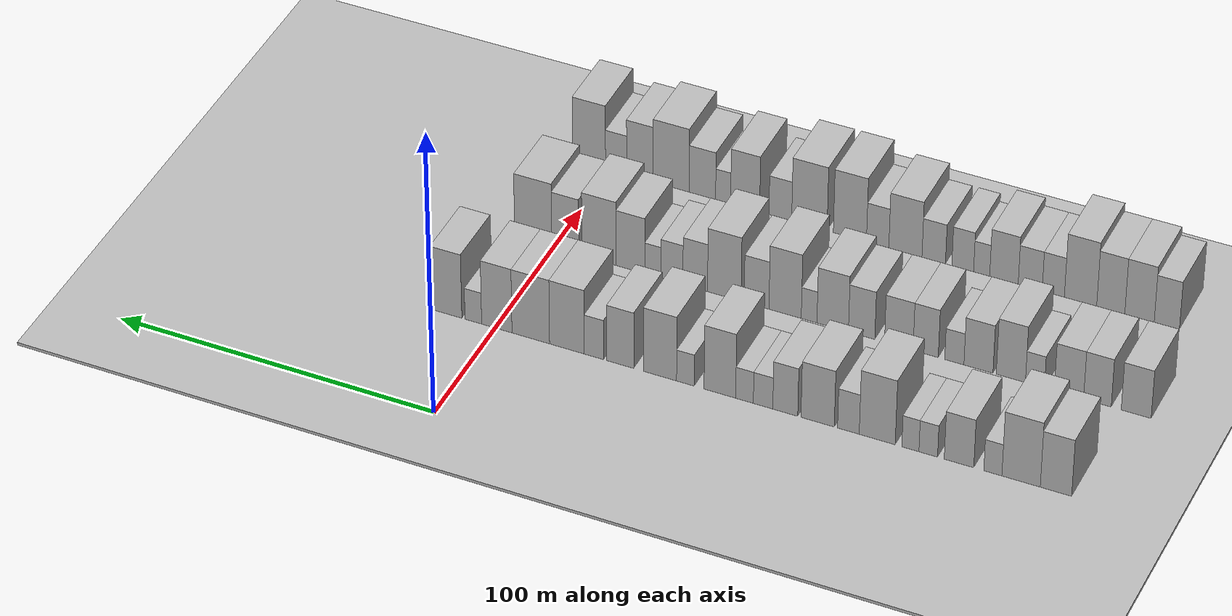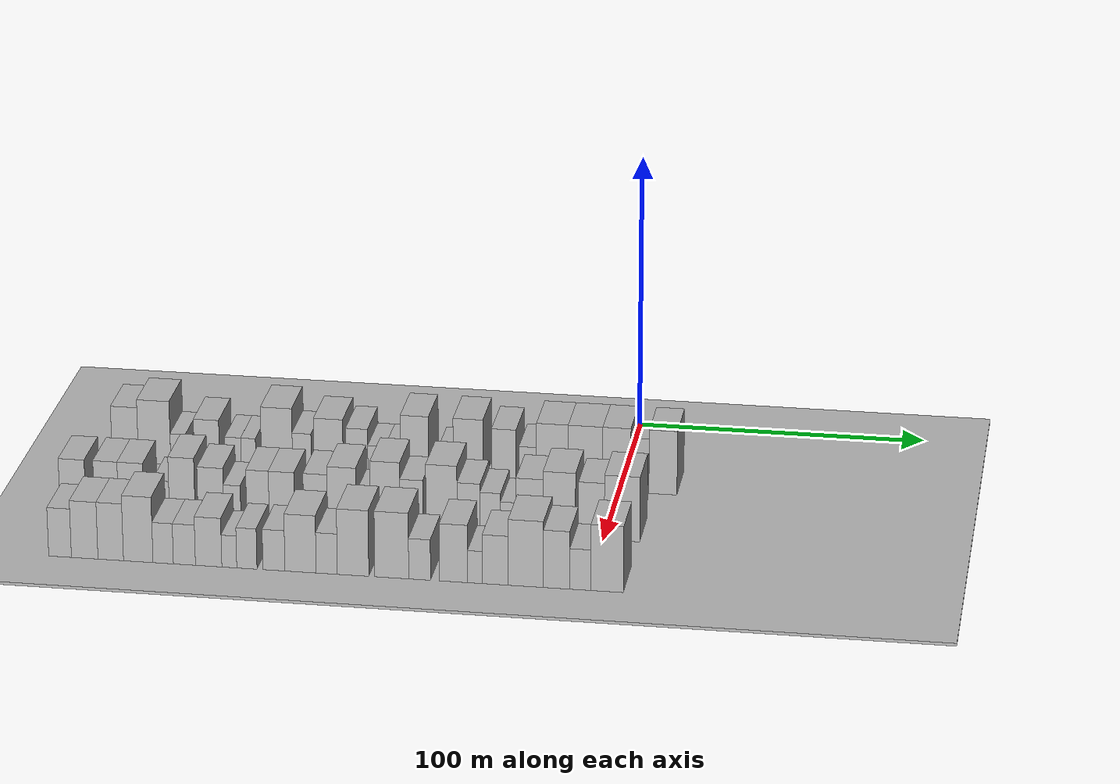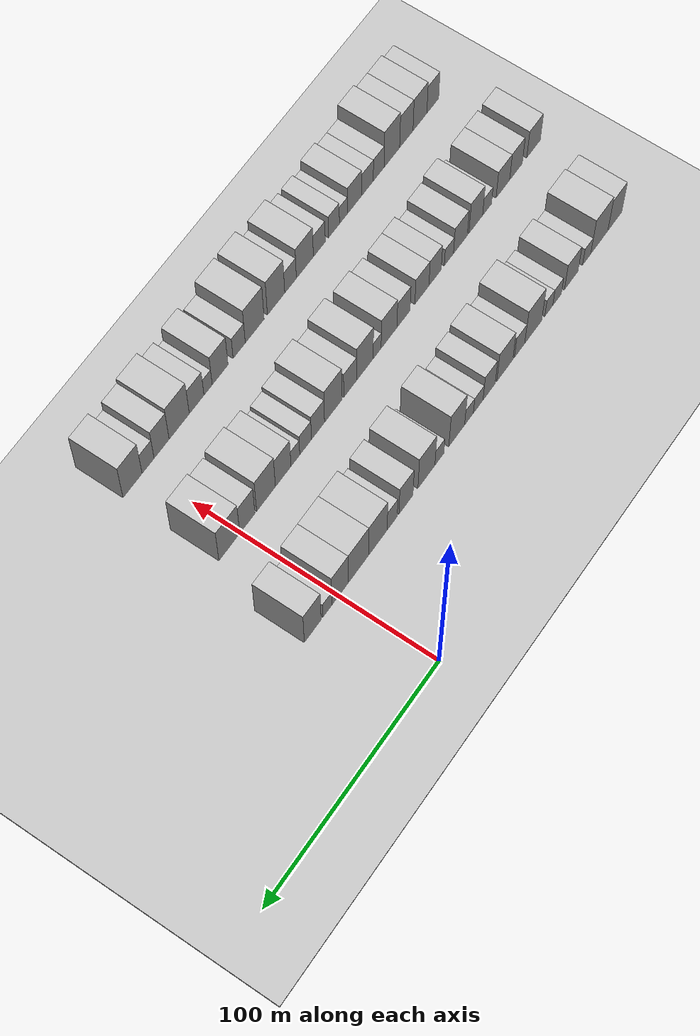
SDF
<sdf version="1.6">
 <world name="default">
  <include><name>ground_plane_1</name><uri>model://HANNAS_ground_plane</uri></include>
  <include>
   <name>ground_plane_2</name>
   <uri>model://HANNAS_ground_plane</uri>
   <pose>100 0 0  0 0 0</pose>
  </include>
  <model name="building_24">
   <static>1</static>
   <pose>50.0000 -172.2734 0 0.000000 0.000000 0.000000</pose>
   <link name="link">
    <pose>0 0 10.50 0 0 0</pose>
    <collision name="collision"><geometry><box><size>20.0000 9.3207 21.0000</size></box></geometry></collision>
    <visual name="visual">
     <cast_shadows>0</cast_shadows>
     <geometry><box><size>20.0000 9.3207 21.0000</size></box></geometry>
     <material>
      <script>
       <uri>model://HANNAS_wall/materials/scripts</uri>
       <uri>model://HANNAS_wall/materials/textures</uri>
       <name>vrc/HANNAS_wall</name>
      </script>
     </material>
    </visual>
   </link>
  </model>
  <model name="building_25">
   <static>1</static>
   <pose>50.0000 -161.8977 0 0.000000 0.000000 0.000000</pose>
   <link name="link">
    <pose>0 0 12.00 0 0 0</pose>
    <collision name="collision"><geometry><box><size>20.0000 11.4307 24.0000</size></box></geometry></collision>
    <visual name="visual">
     <cast_shadows>0</cast_shadows>
     <geometry><box><size>20.0000 11.4307 24.0000</size></box></geometry>
     <material>
      <script>
       <uri>model://HANNAS_wall/materials/scripts</uri>
       <uri>model://HANNAS_wall/materials/textures</uri>
       <name>vrc/HANNAS_wall</name>
      </script>
     </material>
    </visual>
   </link>
  </model>
  <model name="building_26">
   <static>1</static>
   <pose>50.0000 -153.4849 0 0.000000 0.000000 0.000000</pose>
   <link name="link">
    <pose>0 0 6.00 0 0 0</pose>
    <collision name="collision"><geometry><box><size>20.0000 5.3948 12.0000</size></box></geometry></collision>
    <visual name="visual">
     <cast_shadows>0</cast_shadows>
     <geometry><box><size>20.0000 5.3948 12.0000</size></box></geometry>
     <material>
      <script>
       <uri>model://HANNAS_wall/materials/scripts</uri>
       <uri>model://HANNAS_wall/materials/textures</uri>
       <name>vrc/HANNAS_wall</name>
      </script>
     </material>
    </visual>
   </link>
  </model>
  <model name="building_27">
   <static>1</static>
   <pose>50.0000 -143.3546 0 0.000000 0.000000 0.000000</pose>
   <link name="link">
    <pose>0 0 9.00 0 0 0</pose>
    <collision name="collision"><geometry><box><size>20.0000 8.8659 18.0000</size></box></geometry></collision>
    <visual name="visual">
     <cast_shadows>0</cast_shadows>
     <geometry><box><size>20.0000 8.8659 18.0000</size></box></geometry>
     <material>
      <script>
       <uri>model://HANNAS_wall/materials/scripts</uri>
       <uri>model://HANNAS_wall/materials/textures</uri>
       <name>vrc/HANNAS_wall</name>
      </script>
     </material>
    </visual>
   </link>
  </model>
  <model name="building_28">
   <static>1</static>
   <pose>50.0000 -134.1133 0 0.000000 0.000000 0.000000</pose>
   <link name="link">
    <pose>0 0 6.00 0 0 0</pose>
    <collision name="collision"><geometry><box><size>20.0000 5.6167 12.0000</size></box></geometry></collision>
    <visual name="visual">
     <cast_shadows>0</cast_shadows>
     <geometry><box><size>20.0000 5.6167 12.0000</size></box></geometry>
     <material>
      <script>
       <uri>model://HANNAS_wall/materials/scripts</uri>
       <uri>model://HANNAS_wall/materials/textures</uri>
       <name>vrc/HANNAS_wall</name>
      </script>
     </material>
    </visual>
   </link>
  </model>
  <model name="building_29">
   <static>1</static>
   <pose>50.0000 -128.7262 0 0.000000 0.000000 0.000000</pose>
   <link name="link">
    <pose>0 0 6.00 0 0 0</pose>
    <collision name="collision"><geometry><box><size>20.0000 5.1574 12.0000</size></box></geometry></collision>
    <visual name="visual">
     <cast_shadows>0</cast_shadows>
     <geometry><box><size>20.0000 5.1574 12.0000</size></box></geometry>
     <material>
      <script>
       <uri>model://HANNAS_wall/materials/scripts</uri>
       <uri>model://HANNAS_wall/materials/textures</uri>
       <name>vrc/HANNAS_wall</name>
      </script>
     </material>
    </visual>
   </link>
  </model>
  <model name="building_30">
   <static>1</static>
   <pose>50.0000 -118.6920 0 0.000000 0.000000 0.000000</pose>
   <link name="link">
    <pose>0 0 12.00 0 0 0</pose>
    <collision name="collision"><geometry><box><size>20.0000 10.9108 24.0000</size></box></geometry></collision>
    <visual name="visual">
     <cast_shadows>0</cast_shadows>
     <geometry><box><size>20.0000 10.9108 24.0000</size></box></geometry>
     <material>
      <script>
       <uri>model://HANNAS_wall/materials/scripts</uri>
       <uri>model://HANNAS_wall/materials/textures</uri>
       <name>vrc/HANNAS_wall</name>
      </script>
     </material>
    </visual>
   </link>
  </model>
  <model name="building_31">
   <static>1</static>
   <pose>50.0000 -109.9447 0 0.000000 0.000000 0.000000</pose>
   <link name="link">
    <pose>0 0 7.50 0 0 0</pose>
    <collision name="collision"><geometry><box><size>20.0000 6.5839 15.0000</size></box></geometry></collision>
    <visual name="visual">
     <cast_shadows>0</cast_shadows>
     <geometry><box><size>20.0000 6.5839 15.0000</size></box></geometry>
     <material>
      <script>
       <uri>model://HANNAS_wall/materials/scripts</uri>
       <uri>model://HANNAS_wall/materials/textures</uri>
       <name>vrc/HANNAS_wall</name>
      </script>
     </material>
    </visual>
   </link>
  </model>
  <model name="building_32">
   <static>1</static>
   <pose>50.0000 -100.5728 0 0.000000 0.000000 0.000000</pose>
   <link name="link">
    <pose>0 0 10.50 0 0 0</pose>
    <collision name="collision"><geometry><box><size>20.0000 10.1598 21.0000</size></box></geometry></collision>
    <visual name="visual">
     <cast_shadows>0</cast_shadows>
     <geometry><box><size>20.0000 10.1598 21.0000</size></box></geometry>
     <material>
      <script>
       <uri>model://HANNAS_wall/materials/scripts</uri>
       <uri>model://HANNAS_wall/materials/textures</uri>
       <name>vrc/HANNAS_wall</name>
      </script>
     </material>
    </visual>
   </link>
  </model>
  <model name="building_33">
   <static>1</static>
   <pose>50.0000 -90.6730 0 0.000000 0.000000 0.000000</pose>
   <link name="link">
    <pose>0 0 9.00 0 0 0</pose>
    <collision name="collision"><geometry><box><size>20.0000 7.6399 18.0000</size></box></geometry></collision>
    <visual name="visual">
     <cast_shadows>0</cast_shadows>
     <geometry><box><size>20.0000 7.6399 18.0000</size></box></geometry>
     <material>
      <script>
       <uri>model://HANNAS_wall/materials/scripts</uri>
       <uri>model://HANNAS_wall/materials/textures</uri>
       <name>vrc/HANNAS_wall</name>
      </script>
     </material>
    </visual>
   </link>
  </model>
  <model name="building_34">
   <static>1</static>
   <pose>50.0000 -83.8669 0 0.000000 0.000000 0.000000</pose>
   <link name="link">
    <pose>0 0 6.00 0 0 0</pose>
    <collision name="collision"><geometry><box><size>20.0000 5.9721 12.0000</size></box></geometry></collision>
    <visual name="visual">
     <cast_shadows>0</cast_shadows>
     <geometry><box><size>20.0000 5.9721 12.0000</size></box></geometry>
     <material>
      <script>
       <uri>model://HANNAS_wall/materials/scripts</uri>
       <uri>model://HANNAS_wall/materials/textures</uri>
       <name>vrc/HANNAS_wall</name>
      </script>
     </material>
    </visual>
   </link>
  </model>
  <model name="building_35">
   <static>1</static>
   <pose>50.0000 -78.1564 0 0.000000 0.000000 0.000000</pose>
   <link name="link">
    <pose>0 0 6.00 0 0 0</pose>
    <collision name="collision"><geometry><box><size>20.0000 5.4489 12.0000</size></box></geometry></collision>
    <visual name="visual">
     <cast_shadows>0</cast_shadows>
     <geometry><box><size>20.0000 5.4489 12.0000</size></box></geometry>
     <material>
      <script>
       <uri>model://HANNAS_wall/materials/scripts</uri>
       <uri>model://HANNAS_wall/materials/textures</uri>
       <name>vrc/HANNAS_wall</name>
      </script>
     </material>
    </visual>
   </link>
  </model>
  <model name="building_36">
   <static>1</static>
   <pose>50.0000 -70.5447 0 0.000000 0.000000 0.000000</pose>
   <link name="link">
    <pose>0 0 12.00 0 0 0</pose>
    <collision name="collision"><geometry><box><size>20.0000 9.7744 24.0000</size></box></geometry></collision>
    <visual name="visual">
     <cast_shadows>0</cast_shadows>
     <geometry><box><size>20.0000 9.7744 24.0000</size></box></geometry>
     <material>
      <script>
       <uri>model://HANNAS_wall/materials/scripts</uri>
       <uri>model://HANNAS_wall/materials/textures</uri>
       <name>vrc/HANNAS_wall</name>
      </script>
     </material>
    </visual>
   </link>
  </model>
  <model name="building_37">
   <static>1</static>
   <pose>50.0000 -59.8990 0 0.000000 0.000000 0.000000</pose>
   <link name="link">
    <pose>0 0 6.00 0 0 0</pose>
    <collision name="collision"><geometry><box><size>20.0000 5.5169 12.0000</size></box></geometry></collision>
    <visual name="visual">
     <cast_shadows>0</cast_shadows>
     <geometry><box><size>20.0000 5.5169 12.0000</size></box></geometry>
     <material>
      <script>
       <uri>model://HANNAS_wall/materials/scripts</uri>
       <uri>model://HANNAS_wall/materials/textures</uri>
       <name>vrc/HANNAS_wall</name>
      </script>
     </material>
    </visual>
   </link>
  </model>
  <model name="building_38">
   <static>1</static>
   <pose>50.0000 -51.9789 0 0.000000 0.000000 0.000000</pose>
   <link name="link">
    <pose>0 0 12.00 0 0 0</pose>
    <collision name="collision"><geometry><box><size>20.0000 10.3234 24.0000</size></box></geometry></collision>
    <visual name="visual">
     <cast_shadows>0</cast_shadows>
     <geometry><box><size>20.0000 10.3234 24.0000</size></box></geometry>
     <material>
      <script>
       <uri>model://HANNAS_wall/materials/scripts</uri>
       <uri>model://HANNAS_wall/materials/textures</uri>
       <name>vrc/HANNAS_wall</name>
      </script>
     </material>
    </visual>
   </link>
  </model>
  <model name="building_39">
   <static>1</static>
   <pose>50.0000 -39.5940 0 0.000000 0.000000 0.000000</pose>
   <link name="link">
    <pose>0 0 10.50 0 0 0</pose>
    <collision name="collision"><geometry><box><size>20.0000 8.4463 21.0000</size></box></geometry></collision>
    <visual name="visual">
     <cast_shadows>0</cast_shadows>
     <geometry><box><size>20.0000 8.4463 21.0000</size></box></geometry>
     <material>
      <script>
       <uri>model://HANNAS_wall/materials/scripts</uri>
       <uri>model://HANNAS_wall/materials/textures</uri>
       <name>vrc/HANNAS_wall</name>
      </script>
     </material>
    </visual>
   </link>
  </model>
  <model name="building_40">
   <static>1</static>
   <pose>50.0000 -31.3470 0 0.000000 0.000000 0.000000</pose>
   <link name="link">
    <pose>0 0 7.50 0 0 0</pose>
    <collision name="collision"><geometry><box><size>20.0000 6.0478 15.0000</size></box></geometry></collision>
    <visual name="visual">
     <cast_shadows>0</cast_shadows>
     <geometry><box><size>20.0000 6.0478 15.0000</size></box></geometry>
     <material>
      <script>
       <uri>model://HANNAS_wall/materials/scripts</uri>
       <uri>model://HANNAS_wall/materials/textures</uri>
       <name>vrc/HANNAS_wall</name>
      </script>
     </material>
    </visual>
   </link>
  </model>
  <model name="building_41">
   <static>1</static>
   <pose>50.0000 -22.8566 0 0.000000 0.000000 0.000000</pose>
   <link name="link">
    <pose>0 0 12.00 0 0 0</pose>
    <collision name="collision"><geometry><box><size>20.0000 10.9331 24.0000</size></box></geometry></collision>
    <visual name="visual">
     <cast_shadows>0</cast_shadows>
     <geometry><box><size>20.0000 10.9331 24.0000</size></box></geometry>
     <material>
      <script>
       <uri>model://HANNAS_wall/materials/scripts</uri>
       <uri>model://HANNAS_wall/materials/textures</uri>
       <name>vrc/HANNAS_wall</name>
      </script>
     </material>
    </visual>
   </link>
  </model>
  <model name="building_42">
   <static>1</static>
   <pose>50.0000 -11.4471 0 0.000000 0.000000 0.000000</pose>
   <link name="link">
    <pose>0 0 12.00 0 0 0</pose>
    <collision name="collision"><geometry><box><size>20.0000 11.8859 24.0000</size></box></geometry></collision>
    <visual name="visual">
     <cast_shadows>0</cast_shadows>
     <geometry><box><size>20.0000 11.8859 24.0000</size></box></geometry>
     <material>
      <script>
       <uri>model://HANNAS_wall/materials/scripts</uri>
       <uri>model://HANNAS_wall/materials/textures</uri>
       <name>vrc/HANNAS_wall</name>
      </script>
     </material>
    </visual>
   </link>
  </model>
  <model name="building_43">
   <static>1</static>
   <pose>50.0000 -0.6827 0 0.000000 0.000000 0.000000</pose>
   <link name="link">
    <pose>0 0 12.00 0 0 0</pose>
    <collision name="collision"><geometry><box><size>20.0000 9.6428 24.0000</size></box></geometry></collision>
    <visual name="visual">
     <cast_shadows>0</cast_shadows>
     <geometry><box><size>20.0000 9.6428 24.0000</size></box></geometry>
     <material>
      <script>
       <uri>model://HANNAS_wall/materials/scripts</uri>
       <uri>model://HANNAS_wall/materials/textures</uri>
       <name>vrc/HANNAS_wall</name>
      </script>
     </material>
    </visual>
   </link>
  </model>
  <model name="building_44">
   <static>1</static>
   <pose>50.0000 6.7849 0 0.000000 0.000000 0.000000</pose>
   <link name="link">
    <pose>0 0 6.00 0 0 0</pose>
    <collision name="collision"><geometry><box><size>20.0000 5.2925 12.0000</size></box></geometry></collision>
    <visual name="visual">
     <cast_shadows>0</cast_shadows>
     <geometry><box><size>20.0000 5.2925 12.0000</size></box></geometry>
     <material>
      <script>
       <uri>model://HANNAS_wall/materials/scripts</uri>
       <uri>model://HANNAS_wall/materials/textures</uri>
       <name>vrc/HANNAS_wall</name>
      </script>
     </material>
    </visual>
   </link>
  </model>
  <model name="building_45">
   <static>1</static>
   <pose>50.0000 15.2552 0 0.000000 0.000000 0.000000</pose>
   <link name="link">
    <pose>0 0 12.00 0 0 0</pose>
    <collision name="collision"><geometry><box><size>20.0000 9.6482 24.0000</size></box></geometry></collision>
    <visual name="visual">
     <cast_shadows>0</cast_shadows>
     <geometry><box><size>20.0000 9.6482 24.0000</size></box></geometry>
     <material>
      <script>
       <uri>model://HANNAS_wall/materials/scripts</uri>
       <uri>model://HANNAS_wall/materials/textures</uri>
       <name>vrc/HANNAS_wall</name>
      </script>
     </material>
    </visual>
   </link>
  </model>
  <model name="building_108">
   <static>1</static>
   <pose>90.0000 -181.2025 0 0.000000 0.000000 0.000000</pose>
   <link name="link">
    <pose>0 0 9.00 0 0 0</pose>
    <collision name="collision"><geometry><box><size>20.0000 8.9839 18.0000</size></box></geometry></collision>
    <visual name="visual">
     <cast_shadows>0</cast_shadows>
     <geometry><box><size>20.0000 8.9839 18.0000</size></box></geometry>
     <material>
      <script>
       <uri>model://HANNAS_wall/materials/scripts</uri>
       <uri>model://HANNAS_wall/materials/textures</uri>
       <name>vrc/HANNAS_wall</name>
      </script>
     </material>
    </visual>
   </link>
  </model>
  <model name="building_109">
   <static>1</static>
   <pose>90.0000 -169.5423 0 0.000000 0.000000 0.000000</pose>
   <link name="link">
    <pose>0 0 9.00 0 0 0</pose>
    <collision name="collision"><geometry><box><size>20.0000 8.3365 18.0000</size></box></geometry></collision>
    <visual name="visual">
     <cast_shadows>0</cast_shadows>
     <geometry><box><size>20.0000 8.3365 18.0000</size></box></geometry>
     <material>
      <script>
       <uri>model://HANNAS_wall/materials/scripts</uri>
       <uri>model://HANNAS_wall/materials/textures</uri>
       <name>vrc/HANNAS_wall</name>
      </script>
     </material>
    </visual>
   </link>
  </model>
  <model name="building_110">
   <static>1</static>
   <pose>90.0000 -160.9481 0 0.000000 0.000000 0.000000</pose>
   <link name="link">
    <pose>0 0 9.00 0 0 0</pose>
    <collision name="collision"><geometry><box><size>20.0000 8.8521 18.0000</size></box></geometry></collision>
    <visual name="visual">
     <cast_shadows>0</cast_shadows>
     <geometry><box><size>20.0000 8.8521 18.0000</size></box></geometry>
     <material>
      <script>
       <uri>model://HANNAS_wall/materials/scripts</uri>
       <uri>model://HANNAS_wall/materials/textures</uri>
       <name>vrc/HANNAS_wall</name>
      </script>
     </material>
    </visual>
   </link>
  </model>
  <model name="building_111">
   <static>1</static>
   <pose>90.0000 -150.6358 0 0.000000 0.000000 0.000000</pose>
   <link name="link">
    <pose>0 0 6.00 0 0 0</pose>
    <collision name="collision"><geometry><box><size>20.0000 5.7725 12.0000</size></box></geometry></collision>
    <visual name="visual">
     <cast_shadows>0</cast_shadows>
     <geometry><box><size>20.0000 5.7725 12.0000</size></box></geometry>
     <material>
      <script>
       <uri>model://HANNAS_wall/materials/scripts</uri>
       <uri>model://HANNAS_wall/materials/textures</uri>
       <name>vrc/HANNAS_wall</name>
      </script>
     </material>
    </visual>
   </link>
  </model>
  <model name="building_112">
   <static>1</static>
   <pose>90.0000 -143.3120 0 0.000000 0.000000 0.000000</pose>
   <link name="link">
    <pose>0 0 10.50 0 0 0</pose>
    <collision name="collision"><geometry><box><size>20.0000 8.8750 21.0000</size></box></geometry></collision>
    <visual name="visual">
     <cast_shadows>0</cast_shadows>
     <geometry><box><size>20.0000 8.8750 21.0000</size></box></geometry>
     <material>
      <script>
       <uri>model://HANNAS_wall/materials/scripts</uri>
       <uri>model://HANNAS_wall/materials/textures</uri>
       <name>vrc/HANNAS_wall</name>
      </script>
     </material>
    </visual>
   </link>
  </model>
  <model name="building_113">
   <static>1</static>
   <pose>90.0000 -133.4377 0 0.000000 0.000000 0.000000</pose>
   <link name="link">
    <pose>0 0 9.00 0 0 0</pose>
    <collision name="collision"><geometry><box><size>20.0000 8.8737 18.0000</size></box></geometry></collision>
    <visual name="visual">
     <cast_shadows>0</cast_shadows>
     <geometry><box><size>20.0000 8.8737 18.0000</size></box></geometry>
     <material>
      <script>
       <uri>model://HANNAS_wall/materials/scripts</uri>
       <uri>model://HANNAS_wall/materials/textures</uri>
       <name>vrc/HANNAS_wall</name>
      </script>
     </material>
    </visual>
   </link>
  </model>
  <model name="building_114">
   <static>1</static>
   <pose>90.0000 -126.0637 0 0.000000 0.000000 0.000000</pose>
   <link name="link">
    <pose>0 0 6.00 0 0 0</pose>
    <collision name="collision"><geometry><box><size>20.0000 5.8742 12.0000</size></box></geometry></collision>
    <visual name="visual">
     <cast_shadows>0</cast_shadows>
     <geometry><box><size>20.0000 5.8742 12.0000</size></box></geometry>
     <material>
      <script>
       <uri>model://HANNAS_wall/materials/scripts</uri>
       <uri>model://HANNAS_wall/materials/textures</uri>
       <name>vrc/HANNAS_wall</name>
      </script>
     </material>
    </visual>
   </link>
  </model>
  <model name="building_115">
   <static>1</static>
   <pose>90.0000 -117.2555 0 0.000000 0.000000 0.000000</pose>
   <link name="link">
    <pose>0 0 9.00 0 0 0</pose>
    <collision name="collision"><geometry><box><size>20.0000 7.7424 18.0000</size></box></geometry></collision>
    <visual name="visual">
     <cast_shadows>0</cast_shadows>
     <geometry><box><size>20.0000 7.7424 18.0000</size></box></geometry>
     <material>
      <script>
       <uri>model://HANNAS_wall/materials/scripts</uri>
       <uri>model://HANNAS_wall/materials/textures</uri>
       <name>vrc/HANNAS_wall</name>
      </script>
     </material>
    </visual>
   </link>
  </model>
  <model name="building_116">
   <static>1</static>
   <pose>90.0000 -108.9760 0 0.000000 0.000000 0.000000</pose>
   <link name="link">
    <pose>0 0 9.00 0 0 0</pose>
    <collision name="collision"><geometry><box><size>20.0000 8.8164 18.0000</size></box></geometry></collision>
    <visual name="visual">
     <cast_shadows>0</cast_shadows>
     <geometry><box><size>20.0000 8.8164 18.0000</size></box></geometry>
     <material>
      <script>
       <uri>model://HANNAS_wall/materials/scripts</uri>
       <uri>model://HANNAS_wall/materials/textures</uri>
       <name>vrc/HANNAS_wall</name>
      </script>
     </material>
    </visual>
   </link>
  </model>
  <model name="building_117">
   <static>1</static>
   <pose>90.0000 -97.4700 0 0.000000 0.000000 0.000000</pose>
   <link name="link">
    <pose>0 0 9.00 0 0 0</pose>
    <collision name="collision"><geometry><box><size>20.0000 8.1957 18.0000</size></box></geometry></collision>
    <visual name="visual">
     <cast_shadows>0</cast_shadows>
     <geometry><box><size>20.0000 8.1957 18.0000</size></box></geometry>
     <material>
      <script>
       <uri>model://HANNAS_wall/materials/scripts</uri>
       <uri>model://HANNAS_wall/materials/textures</uri>
       <name>vrc/HANNAS_wall</name>
      </script>
     </material>
    </visual>
   </link>
  </model>
  <model name="building_118">
   <static>1</static>
   <pose>90.0000 -88.4781 0 0.000000 0.000000 0.000000</pose>
   <link name="link">
    <pose>0 0 10.50 0 0 0</pose>
    <collision name="collision"><geometry><box><size>20.0000 9.7880 21.0000</size></box></geometry></collision>
    <visual name="visual">
     <cast_shadows>0</cast_shadows>
     <geometry><box><size>20.0000 9.7880 21.0000</size></box></geometry>
     <material>
      <script>
       <uri>model://HANNAS_wall/materials/scripts</uri>
       <uri>model://HANNAS_wall/materials/textures</uri>
       <name>vrc/HANNAS_wall</name>
      </script>
     </material>
    </visual>
   </link>
  </model>
  <model name="building_119">
   <static>1</static>
   <pose>90.0000 -81.1361 0 0.000000 0.000000 0.000000</pose>
   <link name="link">
    <pose>0 0 6.00 0 0 0</pose>
    <collision name="collision"><geometry><box><size>20.0000 4.8961 12.0000</size></box></geometry></collision>
    <visual name="visual">
     <cast_shadows>0</cast_shadows>
     <geometry><box><size>20.0000 4.8961 12.0000</size></box></geometry>
     <material>
      <script>
       <uri>model://HANNAS_wall/materials/scripts</uri>
       <uri>model://HANNAS_wall/materials/textures</uri>
       <name>vrc/HANNAS_wall</name>
      </script>
     </material>
    </visual>
   </link>
  </model>
  <model name="building_120">
   <static>1</static>
   <pose>90.0000 -73.6357 0 0.000000 0.000000 0.000000</pose>
   <link name="link">
    <pose>0 0 12.00 0 0 0</pose>
    <collision name="collision"><geometry><box><size>20.0000 10.1047 24.0000</size></box></geometry></collision>
    <visual name="visual">
     <cast_shadows>0</cast_shadows>
     <geometry><box><size>20.0000 10.1047 24.0000</size></box></geometry>
     <material>
      <script>
       <uri>model://HANNAS_wall/materials/scripts</uri>
       <uri>model://HANNAS_wall/materials/textures</uri>
       <name>vrc/HANNAS_wall</name>
      </script>
     </material>
    </visual>
   </link>
  </model>
  <model name="building_121">
   <static>1</static>
   <pose>90.0000 -64.6932 0 0.000000 0.000000 0.000000</pose>
   <link name="link">
    <pose>0 0 9.00 0 0 0</pose>
    <collision name="collision"><geometry><box><size>20.0000 7.7802 18.0000</size></box></geometry></collision>
    <visual name="visual">
     <cast_shadows>0</cast_shadows>
     <geometry><box><size>20.0000 7.7802 18.0000</size></box></geometry>
     <material>
      <script>
       <uri>model://HANNAS_wall/materials/scripts</uri>
       <uri>model://HANNAS_wall/materials/textures</uri>
       <name>vrc/HANNAS_wall</name>
      </script>
     </material>
    </visual>
   </link>
  </model>
  <model name="building_122">
   <static>1</static>
   <pose>90.0000 -54.5188 0 0.000000 0.000000 0.000000</pose>
   <link name="link">
    <pose>0 0 12.00 0 0 0</pose>
    <collision name="collision"><geometry><box><size>20.0000 10.5686 24.0000</size></box></geometry></collision>
    <visual name="visual">
     <cast_shadows>0</cast_shadows>
     <geometry><box><size>20.0000 10.5686 24.0000</size></box></geometry>
     <material>
      <script>
       <uri>model://HANNAS_wall/materials/scripts</uri>
       <uri>model://HANNAS_wall/materials/textures</uri>
       <name>vrc/HANNAS_wall</name>
      </script>
     </material>
    </visual>
   </link>
  </model>
  <model name="building_123">
   <static>1</static>
   <pose>90.0000 -45.3426 0 0.000000 0.000000 0.000000</pose>
   <link name="link">
    <pose>0 0 9.00 0 0 0</pose>
    <collision name="collision"><geometry><box><size>20.0000 7.7840 18.0000</size></box></geometry></collision>
    <visual name="visual">
     <cast_shadows>0</cast_shadows>
     <geometry><box><size>20.0000 7.7840 18.0000</size></box></geometry>
     <material>
      <script>
       <uri>model://HANNAS_wall/materials/scripts</uri>
       <uri>model://HANNAS_wall/materials/textures</uri>
       <name>vrc/HANNAS_wall</name>
      </script>
     </material>
    </visual>
   </link>
  </model>
  <model name="building_124">
   <static>1</static>
   <pose>90.0000 -37.9799 0 0.000000 0.000000 0.000000</pose>
   <link name="link">
    <pose>0 0 7.50 0 0 0</pose>
    <collision name="collision"><geometry><box><size>20.0000 6.9413 15.0000</size></box></geometry></collision>
    <visual name="visual">
     <cast_shadows>0</cast_shadows>
     <geometry><box><size>20.0000 6.9413 15.0000</size></box></geometry>
     <material>
      <script>
       <uri>model://HANNAS_wall/materials/scripts</uri>
       <uri>model://HANNAS_wall/materials/textures</uri>
       <name>vrc/HANNAS_wall</name>
      </script>
     </material>
    </visual>
   </link>
  </model>
  <model name="building_125">
   <static>1</static>
   <pose>90.0000 -31.9118 0 0.000000 0.000000 0.000000</pose>
   <link name="link">
    <pose>0 0 6.00 0 0 0</pose>
    <collision name="collision"><geometry><box><size>20.0000 5.1949 12.0000</size></box></geometry></collision>
    <visual name="visual">
     <cast_shadows>0</cast_shadows>
     <geometry><box><size>20.0000 5.1949 12.0000</size></box></geometry>
     <material>
      <script>
       <uri>model://HANNAS_wall/materials/scripts</uri>
       <uri>model://HANNAS_wall/materials/textures</uri>
       <name>vrc/HANNAS_wall</name>
      </script>
     </material>
    </visual>
   </link>
  </model>
  <model name="building_126">
   <static>1</static>
   <pose>90.0000 -24.7465 0 0.000000 0.000000 0.000000</pose>
   <link name="link">
    <pose>0 0 10.50 0 0 0</pose>
    <collision name="collision"><geometry><box><size>20.0000 9.1358 21.0000</size></box></geometry></collision>
    <visual name="visual">
     <cast_shadows>0</cast_shadows>
     <geometry><box><size>20.0000 9.1358 21.0000</size></box></geometry>
     <material>
      <script>
       <uri>model://HANNAS_wall/materials/scripts</uri>
       <uri>model://HANNAS_wall/materials/textures</uri>
       <name>vrc/HANNAS_wall</name>
      </script>
     </material>
    </visual>
   </link>
  </model>
  <model name="building_127">
   <static>1</static>
   <pose>90.0000 -14.7135 0 0.000000 0.000000 0.000000</pose>
   <link name="link">
    <pose>0 0 12.00 0 0 0</pose>
    <collision name="collision"><geometry><box><size>20.0000 10.9303 24.0000</size></box></geometry></collision>
    <visual name="visual">
     <cast_shadows>0</cast_shadows>
     <geometry><box><size>20.0000 10.9303 24.0000</size></box></geometry>
     <material>
      <script>
       <uri>model://HANNAS_wall/materials/scripts</uri>
       <uri>model://HANNAS_wall/materials/textures</uri>
       <name>vrc/HANNAS_wall</name>
      </script>
     </material>
    </visual>
   </link>
  </model>
  <model name="building_128">
   <static>1</static>
   <pose>90.0000 -3.8963 0 0.000000 0.000000 0.000000</pose>
   <link name="link">
    <pose>0 0 10.50 0 0 0</pose>
    <collision name="collision"><geometry><box><size>20.0000 8.7041 21.0000</size></box></geometry></collision>
    <visual name="visual">
     <cast_shadows>0</cast_shadows>
     <geometry><box><size>20.0000 8.7041 21.0000</size></box></geometry>
     <material>
      <script>
       <uri>model://HANNAS_wall/materials/scripts</uri>
       <uri>model://HANNAS_wall/materials/textures</uri>
       <name>vrc/HANNAS_wall</name>
      </script>
     </material>
    </visual>
   </link>
  </model>
  <model name="building_129">
   <static>1</static>
   <pose>90.0000 6.4374 0 0.000000 0.000000 0.000000</pose>
   <link name="link">
    <pose>0 0 12.00 0 0 0</pose>
    <collision name="collision"><geometry><box><size>20.0000 11.9633 24.0000</size></box></geometry></collision>
    <visual name="visual">
     <cast_shadows>0</cast_shadows>
     <geometry><box><size>20.0000 11.9633 24.0000</size></box></geometry>
     <material>
      <script>
       <uri>model://HANNAS_wall/materials/scripts</uri>
       <uri>model://HANNAS_wall/materials/textures</uri>
       <name>vrc/HANNAS_wall</name>
      </script>
     </material>
    </visual>
   </link>
  </model>
  <model name="building_197">
   <static>1</static>
   <pose>130.0000 -175.8181 0 0.000000 0.000000 0.000000</pose>
   <link name="link">
    <pose>0 0 9.00 0 0 0</pose>
    <collision name="collision"><geometry><box><size>20.0000 7.7048 18.0000</size></box></geometry></collision>
    <visual name="visual">
     <cast_shadows>0</cast_shadows>
     <geometry><box><size>20.0000 7.7048 18.0000</size></box></geometry>
     <material>
      <script>
       <uri>model://HANNAS_wall/materials/scripts</uri>
       <uri>model://HANNAS_wall/materials/textures</uri>
       <name>vrc/HANNAS_wall</name>
      </script>
     </material>
    </visual>
   </link>
  </model>
  <model name="building_198">
   <static>1</static>
   <pose>130.0000 -167.4664 0 0.000000 0.000000 0.000000</pose>
   <link name="link">
    <pose>0 0 10.50 0 0 0</pose>
    <collision name="collision"><geometry><box><size>20.0000 8.9987 21.0000</size></box></geometry></collision>
    <visual name="visual">
     <cast_shadows>0</cast_shadows>
     <geometry><box><size>20.0000 8.9987 21.0000</size></box></geometry>
     <material>
      <script>
       <uri>model://HANNAS_wall/materials/scripts</uri>
       <uri>model://HANNAS_wall/materials/textures</uri>
       <name>vrc/HANNAS_wall</name>
      </script>
     </material>
    </visual>
   </link>
  </model>
  <model name="building_199">
   <static>1</static>
   <pose>130.0000 -158.6494 0 0.000000 0.000000 0.000000</pose>
   <link name="link">
    <pose>0 0 10.50 0 0 0</pose>
    <collision name="collision"><geometry><box><size>20.0000 8.6353 21.0000</size></box></geometry></collision>
    <visual name="visual">
     <cast_shadows>0</cast_shadows>
     <geometry><box><size>20.0000 8.6353 21.0000</size></box></geometry>
     <material>
      <script>
       <uri>model://HANNAS_wall/materials/scripts</uri>
       <uri>model://HANNAS_wall/materials/textures</uri>
       <name>vrc/HANNAS_wall</name>
      </script>
     </material>
    </visual>
   </link>
  </model>
  <model name="building_200">
   <static>1</static>
   <pose>130.0000 -149.3491 0 0.000000 0.000000 0.000000</pose>
   <link name="link">
    <pose>0 0 12.00 0 0 0</pose>
    <collision name="collision"><geometry><box><size>20.0000 9.9653 24.0000</size></box></geometry></collision>
    <visual name="visual">
     <cast_shadows>0</cast_shadows>
     <geometry><box><size>20.0000 9.9653 24.0000</size></box></geometry>
     <material>
      <script>
       <uri>model://HANNAS_wall/materials/scripts</uri>
       <uri>model://HANNAS_wall/materials/textures</uri>
       <name>vrc/HANNAS_wall</name>
      </script>
     </material>
    </visual>
   </link>
  </model>
  <model name="building_201">
   <static>1</static>
   <pose>130.0000 -140.9328 0 0.000000 0.000000 0.000000</pose>
   <link name="link">
    <pose>0 0 7.50 0 0 0</pose>
    <collision name="collision"><geometry><box><size>20.0000 6.8674 15.0000</size></box></geometry></collision>
    <visual name="visual">
     <cast_shadows>0</cast_shadows>
     <geometry><box><size>20.0000 6.8674 15.0000</size></box></geometry>
     <material>
      <script>
       <uri>model://HANNAS_wall/materials/scripts</uri>
       <uri>model://HANNAS_wall/materials/textures</uri>
       <name>vrc/HANNAS_wall</name>
      </script>
     </material>
    </visual>
   </link>
  </model>
  <model name="building_202">
   <static>1</static>
   <pose>130.0000 -133.7847 0 0.000000 0.000000 0.000000</pose>
   <link name="link">
    <pose>0 0 7.50 0 0 0</pose>
    <collision name="collision"><geometry><box><size>20.0000 7.4289 15.0000</size></box></geometry></collision>
    <visual name="visual">
     <cast_shadows>0</cast_shadows>
     <geometry><box><size>20.0000 7.4289 15.0000</size></box></geometry>
     <material>
      <script>
       <uri>model://HANNAS_wall/materials/scripts</uri>
       <uri>model://HANNAS_wall/materials/textures</uri>
       <name>vrc/HANNAS_wall</name>
      </script>
     </material>
    </visual>
   </link>
  </model>
  <model name="building_203">
   <static>1</static>
   <pose>130.0000 -125.6300 0 0.000000 0.000000 0.000000</pose>
   <link name="link">
    <pose>0 0 9.00 0 0 0</pose>
    <collision name="collision"><geometry><box><size>20.0000 8.8804 18.0000</size></box></geometry></collision>
    <visual name="visual">
     <cast_shadows>0</cast_shadows>
     <geometry><box><size>20.0000 8.8804 18.0000</size></box></geometry>
     <material>
      <script>
       <uri>model://HANNAS_wall/materials/scripts</uri>
       <uri>model://HANNAS_wall/materials/textures</uri>
       <name>vrc/HANNAS_wall</name>
      </script>
     </material>
    </visual>
   </link>
  </model>
  <model name="building_204">
   <static>1</static>
   <pose>130.0000 -118.6843 0 0.000000 0.000000 0.000000</pose>
   <link name="link">
    <pose>0 0 6.00 0 0 0</pose>
    <collision name="collision"><geometry><box><size>20.0000 5.0109 12.0000</size></box></geometry></collision>
    <visual name="visual">
     <cast_shadows>0</cast_shadows>
     <geometry><box><size>20.0000 5.0109 12.0000</size></box></geometry>
     <material>
      <script>
       <uri>model://HANNAS_wall/materials/scripts</uri>
       <uri>model://HANNAS_wall/materials/textures</uri>
       <name>vrc/HANNAS_wall</name>
      </script>
     </material>
    </visual>
   </link>
  </model>
  <model name="building_205">
   <static>1</static>
   <pose>130.0000 -112.7816 0 0.000000 0.000000 0.000000</pose>
   <link name="link">
    <pose>0 0 7.50 0 0 0</pose>
    <collision name="collision"><geometry><box><size>20.0000 6.7945 15.0000</size></box></geometry></collision>
    <visual name="visual">
     <cast_shadows>0</cast_shadows>
     <geometry><box><size>20.0000 6.7945 15.0000</size></box></geometry>
     <material>
      <script>
       <uri>model://HANNAS_wall/materials/scripts</uri>
       <uri>model://HANNAS_wall/materials/textures</uri>
       <name>vrc/HANNAS_wall</name>
      </script>
     </material>
    </visual>
   </link>
  </model>
  <model name="building_206">
   <static>1</static>
   <pose>130.0000 -103.7004 0 0.000000 0.000000 0.000000</pose>
   <link name="link">
    <pose>0 0 7.50 0 0 0</pose>
    <collision name="collision"><geometry><box><size>20.0000 7.3680 15.0000</size></box></geometry></collision>
    <visual name="visual">
     <cast_shadows>0</cast_shadows>
     <geometry><box><size>20.0000 7.3680 15.0000</size></box></geometry>
     <material>
      <script>
       <uri>model://HANNAS_wall/materials/scripts</uri>
       <uri>model://HANNAS_wall/materials/textures</uri>
       <name>vrc/HANNAS_wall</name>
      </script>
     </material>
    </visual>
   </link>
  </model>
  <model name="building_207">
   <static>1</static>
   <pose>130.0000 -94.7970 0 0.000000 0.000000 0.000000</pose>
   <link name="link">
    <pose>0 0 10.50 0 0 0</pose>
    <collision name="collision"><geometry><box><size>20.0000 10.4387 21.0000</size></box></geometry></collision>
    <visual name="visual">
     <cast_shadows>0</cast_shadows>
     <geometry><box><size>20.0000 10.4387 21.0000</size></box></geometry>
     <material>
      <script>
       <uri>model://HANNAS_wall/materials/scripts</uri>
       <uri>model://HANNAS_wall/materials/textures</uri>
       <name>vrc/HANNAS_wall</name>
      </script>
     </material>
    </visual>
   </link>
  </model>
  <model name="building_208">
   <static>1</static>
   <pose>130.0000 -86.0427 0 0.000000 0.000000 0.000000</pose>
   <link name="link">
    <pose>0 0 7.50 0 0 0</pose>
    <collision name="collision"><geometry><box><size>20.0000 7.0699 15.0000</size></box></geometry></collision>
    <visual name="visual">
     <cast_shadows>0</cast_shadows>
     <geometry><box><size>20.0000 7.0699 15.0000</size></box></geometry>
     <material>
      <script>
       <uri>model://HANNAS_wall/materials/scripts</uri>
       <uri>model://HANNAS_wall/materials/textures</uri>
       <name>vrc/HANNAS_wall</name>
      </script>
     </material>
    </visual>
   </link>
  </model>
  <model name="building_209">
   <static>1</static>
   <pose>130.0000 -77.2600 0 0.000000 0.000000 0.000000</pose>
   <link name="link">
    <pose>0 0 12.00 0 0 0</pose>
    <collision name="collision"><geometry><box><size>20.0000 10.4955 24.0000</size></box></geometry></collision>
    <visual name="visual">
     <cast_shadows>0</cast_shadows>
     <geometry><box><size>20.0000 10.4955 24.0000</size></box></geometry>
     <material>
      <script>
       <uri>model://HANNAS_wall/materials/scripts</uri>
       <uri>model://HANNAS_wall/materials/textures</uri>
       <name>vrc/HANNAS_wall</name>
      </script>
     </material>
    </visual>
   </link>
  </model>
  <model name="building_210">
   <static>1</static>
   <pose>130.0000 -64.3797 0 0.000000 0.000000 0.000000</pose>
   <link name="link">
    <pose>0 0 12.00 0 0 0</pose>
    <collision name="collision"><geometry><box><size>20.0000 11.2652 24.0000</size></box></geometry></collision>
    <visual name="visual">
     <cast_shadows>0</cast_shadows>
     <geometry><box><size>20.0000 11.2652 24.0000</size></box></geometry>
     <material>
      <script>
       <uri>model://HANNAS_wall/materials/scripts</uri>
       <uri>model://HANNAS_wall/materials/textures</uri>
       <name>vrc/HANNAS_wall</name>
      </script>
     </material>
    </visual>
   </link>
  </model>
  <model name="building_211">
   <static>1</static>
   <pose>130.0000 -55.1247 0 0.000000 0.000000 0.000000</pose>
   <link name="link">
    <pose>0 0 7.50 0 0 0</pose>
    <collision name="collision"><geometry><box><size>20.0000 7.2448 15.0000</size></box></geometry></collision>
    <visual name="visual">
     <cast_shadows>0</cast_shadows>
     <geometry><box><size>20.0000 7.2448 15.0000</size></box></geometry>
     <material>
      <script>
       <uri>model://HANNAS_wall/materials/scripts</uri>
       <uri>model://HANNAS_wall/materials/textures</uri>
       <name>vrc/HANNAS_wall</name>
      </script>
     </material>
    </visual>
   </link>
  </model>
  <model name="building_212">
   <static>1</static>
   <pose>130.0000 -43.8469 0 0.000000 0.000000 0.000000</pose>
   <link name="link">
    <pose>0 0 10.50 0 0 0</pose>
    <collision name="collision"><geometry><box><size>20.0000 9.3107 21.0000</size></box></geometry></collision>
    <visual name="visual">
     <cast_shadows>0</cast_shadows>
     <geometry><box><size>20.0000 9.3107 21.0000</size></box></geometry>
     <material>
      <script>
       <uri>model://HANNAS_wall/materials/scripts</uri>
       <uri>model://HANNAS_wall/materials/textures</uri>
       <name>vrc/HANNAS_wall</name>
      </script>
     </material>
    </visual>
   </link>
  </model>
  <model name="building_213">
   <static>1</static>
   <pose>130.0000 -36.7737 0 0.000000 0.000000 0.000000</pose>
   <link name="link">
    <pose>0 0 6.00 0 0 0</pose>
    <collision name="collision"><geometry><box><size>20.0000 4.8358 12.0000</size></box></geometry></collision>
    <visual name="visual">
     <cast_shadows>0</cast_shadows>
     <geometry><box><size>20.0000 4.8358 12.0000</size></box></geometry>
     <material>
      <script>
       <uri>model://HANNAS_wall/materials/scripts</uri>
       <uri>model://HANNAS_wall/materials/textures</uri>
       <name>vrc/HANNAS_wall</name>
      </script>
     </material>
    </visual>
   </link>
  </model>
  <model name="building_214">
   <static>1</static>
   <pose>130.0000 -30.0800 0 0.000000 0.000000 0.000000</pose>
   <link name="link">
    <pose>0 0 9.00 0 0 0</pose>
    <collision name="collision"><geometry><box><size>20.0000 8.5516 18.0000</size></box></geometry></collision>
    <visual name="visual">
     <cast_shadows>0</cast_shadows>
     <geometry><box><size>20.0000 8.5516 18.0000</size></box></geometry>
     <material>
      <script>
       <uri>model://HANNAS_wall/materials/scripts</uri>
       <uri>model://HANNAS_wall/materials/textures</uri>
       <name>vrc/HANNAS_wall</name>
      </script>
     </material>
    </visual>
   </link>
  </model>
  <model name="building_215">
   <static>1</static>
   <pose>130.0000 -19.9773 0 0.000000 0.000000 0.000000</pose>
   <link name="link">
    <pose>0 0 12.00 0 0 0</pose>
    <collision name="collision"><geometry><box><size>20.0000 11.6537 24.0000</size></box></geometry></collision>
    <visual name="visual">
     <cast_shadows>0</cast_shadows>
     <geometry><box><size>20.0000 11.6537 24.0000</size></box></geometry>
     <material>
      <script>
       <uri>model://HANNAS_wall/materials/scripts</uri>
       <uri>model://HANNAS_wall/materials/textures</uri>
       <name>vrc/HANNAS_wall</name>
      </script>
     </material>
    </visual>
   </link>
  </model>
  <model name="building_216">
   <static>1</static>
   <pose>130.0000 -9.8284 0 0.000000 0.000000 0.000000</pose>
   <link name="link">
    <pose>0 0 10.50 0 0 0</pose>
    <collision name="collision"><geometry><box><size>20.0000 8.6442 21.0000</size></box></geometry></collision>
    <visual name="visual">
     <cast_shadows>0</cast_shadows>
     <geometry><box><size>20.0000 8.6442 21.0000</size></box></geometry>
     <material>
      <script>
       <uri>model://HANNAS_wall/materials/scripts</uri>
       <uri>model://HANNAS_wall/materials/textures</uri>
       <name>vrc/HANNAS_wall</name>
      </script>
     </material>
    </visual>
   </link>
  </model>
  <model name="building_217">
   <static>1</static>
   <pose>130.0000 -2.0779 0 0.000000 0.000000 0.000000</pose>
   <link name="link">
    <pose>0 0 7.50 0 0 0</pose>
    <collision name="collision"><geometry><box><size>20.0000 6.8568 15.0000</size></box></geometry></collision>
    <visual name="visual">
     <cast_shadows>0</cast_shadows>
     <geometry><box><size>20.0000 6.8568 15.0000</size></box></geometry>
     <material>
      <script>
       <uri>model://HANNAS_wall/materials/scripts</uri>
       <uri>model://HANNAS_wall/materials/textures</uri>
       <name>vrc/HANNAS_wall</name>
      </script>
     </material>
    </visual>
   </link>
  </model>
  <model name="building_218">
   <static>1</static>
   <pose>130.0000 6.7359 0 0.000000 0.000000 0.000000</pose>
   <link name="link">
    <pose>0 0 12.00 0 0 0</pose>
    <collision name="collision"><geometry><box><size>20.0000 10.7706 24.0000</size></box></geometry></collision>
    <visual name="visual">
     <cast_shadows>0</cast_shadows>
     <geometry><box><size>20.0000 10.7706 24.0000</size></box></geometry>
     <material>
      <script>
       <uri>model://HANNAS_wall/materials/scripts</uri>
       <uri>model://HANNAS_wall/materials/textures</uri>
       <name>vrc/HANNAS_wall</name>
      </script>
     </material>
    </visual>
   </link>
  </model>
 </world>
</sdf>
